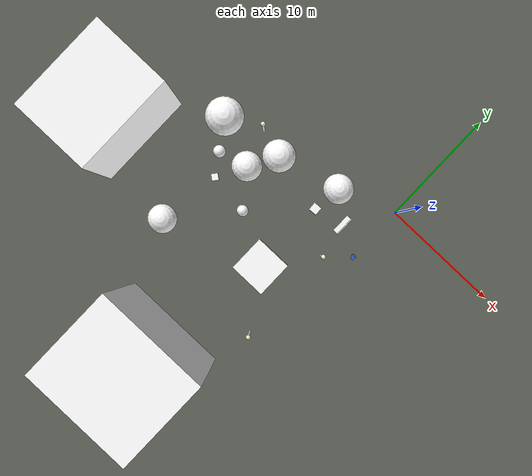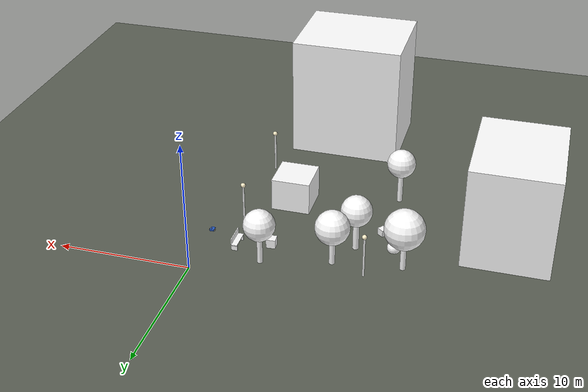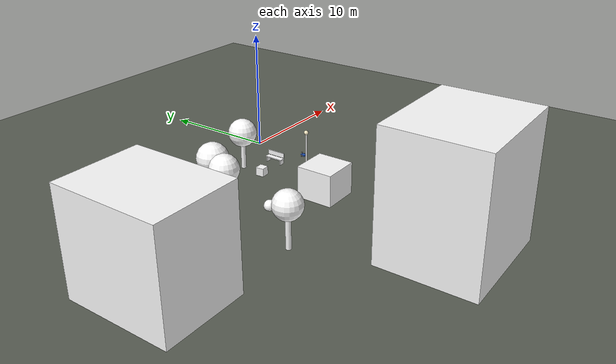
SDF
<sdf version="1.9">
 <world name="park_0">
  <model name="ground_plane">
   <static>true</static>
   <link name="link">
    <collision name="collision">
     <geometry><plane><normal>0 0 1</normal><size>300.000 300.000</size></plane></geometry>
     <surface><friction><ode><mu>1.0</mu><mu2>1.0</mu2></ode></friction></surface>
    </collision>
    <visual name="visual">
     <geometry><plane><normal>0 0 1</normal><size>300.000 300.000</size></plane></geometry>
     <material>
      <ambient>0.350 0.370 0.330 1</ambient>
      <diffuse>0.350 0.370 0.330 1</diffuse>
      <specular>0.08 0.08 0.08 1</specular>
     </material>
    </visual>
   </link>
  </model>
  <model name="building_7">
   <static>true</static>
   <pose>-6.849 -22.213 0.000 0.0000 0.0000 0.0000</pose>
   <link name="link">
    <collision name="c0">
     <pose>0.000 0.000 4.946 0.0000 0.0000 0.0000</pose>
     <geometry><box><size>8.918 7.427 9.893</size></box></geometry>
    </collision>
    <visual name="v0">
     <pose>0.000 0.000 4.946 0.0000 0.0000 0.0000</pose>
     <geometry><box><size>8.918 7.427 9.893</size></box></geometry>
     <material>
      <ambient>1.000 1.000 1.000 1</ambient>
      <diffuse>1.000 1.000 1.000 1</diffuse>
      <specular>0.08 0.08 0.08 1</specular>
      <pbr>
       <metal>
        <albedo_map>model://omnivla_textures/materials/textures/brick_red.png</albedo_map>
        <roughness>0.85</roughness>
        <metalness>0.0</metalness>
       </metal>
      </pbr>
     </material>
    </visual>
   </link>
  </model>
  <model name="building_14">
   <static>true</static>
   <pose>-21.716 -9.597 0.000 0.0000 0.0000 1.5708</pose>
   <link name="link">
    <collision name="c0">
     <pose>0.000 0.000 3.948 0.0000 0.0000 0.0000</pose>
     <geometry><box><size>8.286 6.431 7.897</size></box></geometry>
    </collision>
    <visual name="v0">
     <pose>0.000 0.000 3.948 0.0000 0.0000 0.0000</pose>
     <geometry><box><size>8.286 6.431 7.897</size></box></geometry>
     <material>
      <ambient>1.000 1.000 1.000 1</ambient>
      <diffuse>1.000 1.000 1.000 1</diffuse>
      <specular>0.08 0.08 0.08 1</specular>
      <pbr>
       <metal>
        <albedo_map>model://omnivla_textures/materials/textures/brick_red.png</albedo_map>
        <roughness>0.85</roughness>
        <metalness>0.0</metalness>
       </metal>
      </pbr>
     </material>
    </visual>
   </link>
  </model>
  <model name="building_18">
   <static>true</static>
   <pose>-4.916 -10.492 0.000 0.0000 0.0000 -1.5708</pose>
   <link name="link">
    <collision name="c0">
     <pose>0.000 0.000 1.300 0.0000 0.0000 0.0000</pose>
     <geometry><box><size>3.000 3.000 2.600</size></box></geometry>
    </collision>
    <visual name="v0">
     <pose>0.000 0.000 1.300 0.0000 0.0000 0.0000</pose>
     <geometry><box><size>3.000 3.000 2.600</size></box></geometry>
     <material>
      <ambient>1.000 1.000 1.000 1</ambient>
      <diffuse>1.000 1.000 1.000 1</diffuse>
      <specular>0.08 0.08 0.08 1</specular>
      <pbr>
       <metal>
        <albedo_map>model://omnivla_textures/materials/textures/facade_gray.png</albedo_map>
        <roughness>0.85</roughness>
        <metalness>0.0</metalness>
       </metal>
      </pbr>
     </material>
    </visual>
   </link>
  </model>
  <model name="tree_31">
   <static>true</static>
   <pose>-4.671 -2.091 0.000 0.0000 0.0000 2.9284</pose>
   <link name="link">
    <collision name="c0">
     <pose>0.000 0.000 1.229 0.0000 0.0000 0.0000</pose>
     <geometry><cylinder><radius>0.196</radius><length>2.459</length></cylinder></geometry>
    </collision>
    <visual name="v0">
     <pose>0.000 0.000 1.229 0.0000 0.0000 0.0000</pose>
     <geometry><cylinder><radius>0.196</radius><length>2.459</length></cylinder></geometry>
     <material>
      <ambient>1.000 1.000 1.000 1</ambient>
      <diffuse>1.000 1.000 1.000 1</diffuse>
      <specular>0.08 0.08 0.08 1</specular>
      <pbr>
       <metal>
        <albedo_map>model://omnivla_textures/materials/textures/bark.png</albedo_map>
        <roughness>0.85</roughness>
        <metalness>0.0</metalness>
       </metal>
      </pbr>
     </material>
    </visual>
    <visual name="v1">
     <pose>0.000 0.000 3.160 0.0000 0.0000 0.0000</pose>
     <geometry><sphere><radius>1.169</radius></sphere></geometry>
     <material>
      <ambient>1.000 1.000 1.000 1</ambient>
      <diffuse>1.000 1.000 1.000 1</diffuse>
      <specular>0.08 0.08 0.08 1</specular>
      <pbr>
       <metal>
        <albedo_map>model://omnivla_textures/materials/textures/leaves.png</albedo_map>
        <roughness>0.85</roughness>
        <metalness>0.0</metalness>
       </metal>
      </pbr>
     </material>
    </visual>
   </link>
  </model>
  <model name="tree_36">
   <static>true</static>
   <pose>-14.701 -4.049 0.000 0.0000 0.0000 -2.6475</pose>
   <link name="link">
    <collision name="c0">
     <pose>0.000 0.000 1.237 0.0000 0.0000 0.0000</pose>
     <geometry><cylinder><radius>0.205</radius><length>2.474</length></cylinder></geometry>
    </collision>
    <visual name="v0">
     <pose>0.000 0.000 1.237 0.0000 0.0000 0.0000</pose>
     <geometry><cylinder><radius>0.205</radius><length>2.474</length></cylinder></geometry>
     <material>
      <ambient>1.000 1.000 1.000 1</ambient>
      <diffuse>1.000 1.000 1.000 1</diffuse>
      <specular>0.08 0.08 0.08 1</specular>
      <pbr>
       <metal>
        <albedo_map>model://omnivla_textures/materials/textures/bark.png</albedo_map>
        <roughness>0.85</roughness>
        <metalness>0.0</metalness>
       </metal>
      </pbr>
     </material>
    </visual>
    <visual name="v1">
     <pose>0.000 0.000 3.369 0.0000 0.0000 0.0000</pose>
     <geometry><sphere><radius>1.492</radius></sphere></geometry>
     <material>
      <ambient>1.000 1.000 1.000 1</ambient>
      <diffuse>1.000 1.000 1.000 1</diffuse>
      <specular>0.08 0.08 0.08 1</specular>
      <pbr>
       <metal>
        <albedo_map>model://omnivla_textures/materials/textures/leaves.png</albedo_map>
        <roughness>0.85</roughness>
        <metalness>0.0</metalness>
       </metal>
      </pbr>
     </material>
    </visual>
   </link>
  </model>
  <model name="tree_46">
   <static>true</static>
   <pose>-9.683 -3.358 0.000 0.0000 0.0000 -2.7464</pose>
   <link name="link">
    <collision name="c0">
     <pose>0.000 0.000 1.144 0.0000 0.0000 0.0000</pose>
     <geometry><cylinder><radius>0.213</radius><length>2.288</length></cylinder></geometry>
    </collision>
    <visual name="v0">
     <pose>0.000 0.000 1.144 0.0000 0.0000 0.0000</pose>
     <geometry><cylinder><radius>0.213</radius><length>2.288</length></cylinder></geometry>
     <material>
      <ambient>1.000 1.000 1.000 1</ambient>
      <diffuse>1.000 1.000 1.000 1</diffuse>
      <specular>0.08 0.08 0.08 1</specular>
      <pbr>
       <metal>
        <albedo_map>model://omnivla_textures/materials/textures/bark.png</albedo_map>
        <roughness>0.85</roughness>
        <metalness>0.0</metalness>
       </metal>
      </pbr>
     </material>
    </visual>
    <visual name="v1">
     <pose>0.000 0.000 3.054 0.0000 0.0000 0.0000</pose>
     <geometry><sphere><radius>1.277</radius></sphere></geometry>
     <material>
      <ambient>1.000 1.000 1.000 1</ambient>
      <diffuse>1.000 1.000 1.000 1</diffuse>
      <specular>0.08 0.08 0.08 1</specular>
      <pbr>
       <metal>
        <albedo_map>model://omnivla_textures/materials/textures/leaves.png</albedo_map>
        <roughness>0.85</roughness>
        <metalness>0.0</metalness>
       </metal>
      </pbr>
     </material>
    </visual>
   </link>
  </model>
  <model name="tree_48">
   <static>true</static>
   <pose>-12.793 -12.890 0.000 0.0000 0.0000 2.3176</pose>
   <link name="link">
    <collision name="c0">
     <pose>0.000 0.000 1.348 0.0000 0.0000 0.0000</pose>
     <geometry><cylinder><radius>0.203</radius><length>2.697</length></cylinder></geometry>
    </collision>
    <visual name="v0">
     <pose>0.000 0.000 1.348 0.0000 0.0000 0.0000</pose>
     <geometry><cylinder><radius>0.203</radius><length>2.697</length></cylinder></geometry>
     <material>
      <ambient>1.000 1.000 1.000 1</ambient>
      <diffuse>1.000 1.000 1.000 1</diffuse>
      <specular>0.08 0.08 0.08 1</specular>
      <pbr>
       <metal>
        <albedo_map>model://omnivla_textures/materials/textures/bark.png</albedo_map>
        <roughness>0.85</roughness>
        <metalness>0.0</metalness>
       </metal>
      </pbr>
     </material>
    </visual>
    <visual name="v1">
     <pose>0.000 0.000 3.365 0.0000 0.0000 0.0000</pose>
     <geometry><sphere><radius>1.114</radius></sphere></geometry>
     <material>
      <ambient>1.000 1.000 1.000 1</ambient>
      <diffuse>1.000 1.000 1.000 1</diffuse>
      <specular>0.08 0.08 0.08 1</specular>
      <pbr>
       <metal>
        <albedo_map>model://omnivla_textures/materials/textures/leaves.png</albedo_map>
        <roughness>0.85</roughness>
        <metalness>0.0</metalness>
       </metal>
      </pbr>
     </material>
    </visual>
   </link>
  </model>
  <model name="tree_70">
   <static>true</static>
   <pose>-10.904 -5.622 0.000 0.0000 0.0000 1.3567</pose>
   <link name="link">
    <collision name="c0">
     <pose>0.000 0.000 1.271 0.0000 0.0000 0.0000</pose>
     <geometry><cylinder><radius>0.230</radius><length>2.542</length></cylinder></geometry>
    </collision>
    <visual name="v0">
     <pose>0.000 0.000 1.271 0.0000 0.0000 0.0000</pose>
     <geometry><cylinder><radius>0.230</radius><length>2.542</length></cylinder></geometry>
     <material>
      <ambient>1.000 1.000 1.000 1</ambient>
      <diffuse>1.000 1.000 1.000 1</diffuse>
      <specular>0.08 0.08 0.08 1</specular>
      <pbr>
       <metal>
        <albedo_map>model://omnivla_textures/materials/textures/bark.png</albedo_map>
        <roughness>0.85</roughness>
        <metalness>0.0</metalness>
       </metal>
      </pbr>
     </material>
    </visual>
    <visual name="v1">
     <pose>0.000 0.000 3.242 0.0000 0.0000 0.0000</pose>
     <geometry><sphere><radius>1.167</radius></sphere></geometry>
     <material>
      <ambient>1.000 1.000 1.000 1</ambient>
      <diffuse>1.000 1.000 1.000 1</diffuse>
      <specular>0.08 0.08 0.08 1</specular>
      <pbr>
       <metal>
        <albedo_map>model://omnivla_textures/materials/textures/leaves.png</albedo_map>
        <roughness>0.85</roughness>
        <metalness>0.0</metalness>
       </metal>
      </pbr>
     </material>
    </visual>
   </link>
  </model>
  <model name="bench_114">
   <static>true</static>
   <pose>-2.428 -3.652 0.000 0.0000 0.0000 1.5708</pose>
   <link name="link">
    <collision name="c0">
     <pose>0.000 0.000 0.450 0.0000 0.0000 0.0000</pose>
     <geometry><box><size>1.600 0.450 0.080</size></box></geometry>
    </collision>
    <visual name="v0">
     <pose>0.000 0.000 0.450 0.0000 0.0000 0.0000</pose>
     <geometry><box><size>1.600 0.450 0.080</size></box></geometry>
     <material>
      <ambient>1.000 1.000 1.000 1</ambient>
      <diffuse>1.000 1.000 1.000 1</diffuse>
      <specular>0.08 0.08 0.08 1</specular>
      <pbr>
       <metal>
        <albedo_map>model://omnivla_textures/materials/textures/wood_floor.png</albedo_map>
        <roughness>0.85</roughness>
        <metalness>0.0</metalness>
       </metal>
      </pbr>
     </material>
    </visual>
    <collision name="c1">
     <pose>0.000 -0.200 0.750 0.0000 0.0000 0.0000</pose>
     <geometry><box><size>1.600 0.060 0.400</size></box></geometry>
    </collision>
    <visual name="v1">
     <pose>0.000 -0.200 0.750 0.0000 0.0000 0.0000</pose>
     <geometry><box><size>1.600 0.060 0.400</size></box></geometry>
     <material>
      <ambient>1.000 1.000 1.000 1</ambient>
      <diffuse>1.000 1.000 1.000 1</diffuse>
      <specular>0.08 0.08 0.08 1</specular>
      <pbr>
       <metal>
        <albedo_map>model://omnivla_textures/materials/textures/wood_floor.png</albedo_map>
        <roughness>0.85</roughness>
        <metalness>0.0</metalness>
       </metal>
      </pbr>
     </material>
    </visual>
    <collision name="c2">
     <pose>0.700 0.000 0.225 0.0000 0.0000 0.0000</pose>
     <geometry><box><size>0.080 0.450 0.450</size></box></geometry>
    </collision>
    <visual name="v2">
     <pose>0.700 0.000 0.225 0.0000 0.0000 0.0000</pose>
     <geometry><box><size>0.080 0.450 0.450</size></box></geometry>
     <material>
      <ambient>1.000 1.000 1.000 1</ambient>
      <diffuse>1.000 1.000 1.000 1</diffuse>
      <specular>0.08 0.08 0.08 1</specular>
      <pbr>
       <metal>
        <albedo_map>model://omnivla_textures/materials/textures/metal.png</albedo_map>
        <roughness>0.85</roughness>
        <metalness>0.0</metalness>
       </metal>
      </pbr>
     </material>
    </visual>
    <collision name="c3">
     <pose>-0.700 0.000 0.225 0.0000 0.0000 0.0000</pose>
     <geometry><box><size>0.080 0.450 0.450</size></box></geometry>
    </collision>
    <visual name="v3">
     <pose>-0.700 0.000 0.225 0.0000 0.0000 0.0000</pose>
     <geometry><box><size>0.080 0.450 0.450</size></box></geometry>
     <material>
      <ambient>1.000 1.000 1.000 1</ambient>
      <diffuse>1.000 1.000 1.000 1</diffuse>
      <specular>0.08 0.08 0.08 1</specular>
      <pbr>
       <metal>
        <albedo_map>model://omnivla_textures/materials/textures/metal.png</albedo_map>
        <roughness>0.85</roughness>
        <metalness>0.0</metalness>
       </metal>
      </pbr>
     </material>
    </visual>
   </link>
  </model>
  <model name="lamp_121">
   <static>true</static>
   <pose>-12.193 -2.467 0.000 0.0000 0.0000 0.0000</pose>
   <link name="link">
    <collision name="c0">
     <pose>0.000 0.000 1.600 0.0000 0.0000 0.0000</pose>
     <geometry><cylinder><radius>0.070</radius><length>3.200</length></cylinder></geometry>
    </collision>
    <visual name="v0">
     <pose>0.000 0.000 1.600 0.0000 0.0000 0.0000</pose>
     <geometry><cylinder><radius>0.070</radius><length>3.200</length></cylinder></geometry>
     <material>
      <ambient>1.000 1.000 1.000 1</ambient>
      <diffuse>1.000 1.000 1.000 1</diffuse>
      <specular>0.08 0.08 0.08 1</specular>
      <pbr>
       <metal>
        <albedo_map>model://omnivla_textures/materials/textures/metal.png</albedo_map>
        <roughness>0.85</roughness>
        <metalness>0.0</metalness>
       </metal>
      </pbr>
     </material>
    </visual>
    <visual name="v1">
     <pose>0.000 0.000 3.300 0.0000 0.0000 0.0000</pose>
     <geometry><sphere><radius>0.180</radius></sphere></geometry>
     <material>
      <ambient>1.000 0.950 0.800 1</ambient>
      <diffuse>1.000 0.950 0.800 1</diffuse>
      <specular>0.08 0.08 0.08 1</specular>
     </material>
    </visual>
   </link>
  </model>
  <model name="lamp_130">
   <static>true</static>
   <pose>-1.957 -6.632 0.000 0.0000 0.0000 1.5708</pose>
   <link name="link">
    <collision name="c0">
     <pose>0.000 0.000 1.600 0.0000 0.0000 0.0000</pose>
     <geometry><cylinder><radius>0.070</radius><length>3.200</length></cylinder></geometry>
    </collision>
    <visual name="v0">
     <pose>0.000 0.000 1.600 0.0000 0.0000 0.0000</pose>
     <geometry><cylinder><radius>0.070</radius><length>3.200</length></cylinder></geometry>
     <material>
      <ambient>1.000 1.000 1.000 1</ambient>
      <diffuse>1.000 1.000 1.000 1</diffuse>
      <specular>0.08 0.08 0.08 1</specular>
      <pbr>
       <metal>
        <albedo_map>model://omnivla_textures/materials/textures/metal.png</albedo_map>
        <roughness>0.85</roughness>
        <metalness>0.0</metalness>
       </metal>
      </pbr>
     </material>
    </visual>
    <visual name="v1">
     <pose>0.000 0.000 3.300 0.0000 0.0000 0.0000</pose>
     <geometry><sphere><radius>0.180</radius></sphere></geometry>
     <material>
      <ambient>1.000 0.950 0.800 1</ambient>
      <diffuse>1.000 0.950 0.800 1</diffuse>
      <specular>0.08 0.08 0.08 1</specular>
     </material>
    </visual>
   </link>
  </model>
  <model name="lamp_165">
   <static>true</static>
   <pose>-1.912 -14.958 0.000 0.0000 0.0000 1.5708</pose>
   <link name="link">
    <collision name="c0">
     <pose>0.000 0.000 1.600 0.0000 0.0000 0.0000</pose>
     <geometry><cylinder><radius>0.070</radius><length>3.200</length></cylinder></geometry>
    </collision>
    <visual name="v0">
     <pose>0.000 0.000 1.600 0.0000 0.0000 0.0000</pose>
     <geometry><cylinder><radius>0.070</radius><length>3.200</length></cylinder></geometry>
     <material>
      <ambient>1.000 1.000 1.000 1</ambient>
      <diffuse>1.000 1.000 1.000 1</diffuse>
      <specular>0.08 0.08 0.08 1</specular>
      <pbr>
       <metal>
        <albedo_map>model://omnivla_textures/materials/textures/metal.png</albedo_map>
        <roughness>0.85</roughness>
        <metalness>0.0</metalness>
       </metal>
      </pbr>
     </material>
    </visual>
    <visual name="v1">
     <pose>0.000 0.000 3.300 0.0000 0.0000 0.0000</pose>
     <geometry><sphere><radius>0.180</radius></sphere></geometry>
     <material>
      <ambient>1.000 0.950 0.800 1</ambient>
      <diffuse>1.000 0.950 0.800 1</diffuse>
      <specular>0.08 0.08 0.08 1</specular>
     </material>
    </visual>
   </link>
  </model>
  <model name="rock_415">
   <static>true</static>
   <pose>-13.660 -6.123 0.000 0.0000 0.0000 -2.5295</pose>
   <link name="link">
    <collision name="c0">
     <pose>0.000 0.000 0.203 0.0000 0.0000 0.0000</pose>
     <geometry><sphere><radius>0.506</radius></sphere></geometry>
    </collision>
    <visual name="v0">
     <pose>0.000 0.000 0.203 0.0000 0.0000 0.0000</pose>
     <geometry><sphere><radius>0.506</radius></sphere></geometry>
     <material>
      <ambient>1.000 1.000 1.000 1</ambient>
      <diffuse>1.000 1.000 1.000 1</diffuse>
      <specular>0.08 0.08 0.08 1</specular>
      <pbr>
       <metal>
        <albedo_map>model://omnivla_textures/materials/textures/rock.png</albedo_map>
        <roughness>0.85</roughness>
        <metalness>0.0</metalness>
       </metal>
      </pbr>
     </material>
    </visual>
   </link>
  </model>
  <model name="rock_454">
   <static>true</static>
   <pose>-9.029 -8.311 0.000 0.0000 0.0000 -0.3880</pose>
   <link name="link">
    <collision name="c0">
     <pose>0.000 0.000 0.186 0.0000 0.0000 0.0000</pose>
     <geometry><sphere><radius>0.466</radius></sphere></geometry>
    </collision>
    <visual name="v0">
     <pose>0.000 0.000 0.186 0.0000 0.0000 0.0000</pose>
     <geometry><sphere><radius>0.466</radius></sphere></geometry>
     <material>
      <ambient>1.000 1.000 1.000 1</ambient>
      <diffuse>1.000 1.000 1.000 1</diffuse>
      <specular>0.08 0.08 0.08 1</specular>
      <pbr>
       <metal>
        <albedo_map>model://omnivla_textures/materials/textures/rock.png</albedo_map>
        <roughness>0.85</roughness>
        <metalness>0.0</metalness>
       </metal>
      </pbr>
     </material>
    </visual>
   </link>
  </model>
  <model name="crate_482">
   <static>true</static>
   <pose>-4.887 -4.219 0.000 0.0000 0.0000 -3.0808</pose>
   <link name="link">
    <collision name="c0">
     <pose>0.000 0.000 0.346 0.0000 0.0000 0.0000</pose>
     <geometry><box><size>0.693 0.693 0.693</size></box></geometry>
    </collision>
    <visual name="v0">
     <pose>0.000 0.000 0.346 0.0000 0.0000 0.0000</pose>
     <geometry><box><size>0.693 0.693 0.693</size></box></geometry>
     <material>
      <ambient>1.000 1.000 1.000 1</ambient>
      <diffuse>1.000 1.000 1.000 1</diffuse>
      <specular>0.08 0.08 0.08 1</specular>
      <pbr>
       <metal>
        <albedo_map>model://omnivla_textures/materials/textures/cardboard.png</albedo_map>
        <roughness>0.85</roughness>
        <metalness>0.0</metalness>
       </metal>
      </pbr>
     </material>
    </visual>
   </link>
  </model>
  <model name="crate_487">
   <static>true</static>
   <pose>-12.467 -7.873 0.000 0.0000 0.0000 -2.2227</pose>
   <link name="link">
    <collision name="c0">
     <pose>0.000 0.000 0.268 0.0000 0.0000 0.0000</pose>
     <geometry><box><size>0.535 0.535 0.535</size></box></geometry>
    </collision>
    <visual name="v0">
     <pose>0.000 0.000 0.268 0.0000 0.0000 0.0000</pose>
     <geometry><box><size>0.535 0.535 0.535</size></box></geometry>
     <material>
      <ambient>1.000 1.000 1.000 1</ambient>
      <diffuse>1.000 1.000 1.000 1</diffuse>
      <specular>0.08 0.08 0.08 1</specular>
      <pbr>
       <metal>
        <albedo_map>model://omnivla_textures/materials/textures/cardboard.png</albedo_map>
        <roughness>0.85</roughness>
        <metalness>0.0</metalness>
       </metal>
      </pbr>
     </material>
    </visual>
   </link>
  </model>
  <include>
   <uri>model://omnivla_robot</uri>
   <name>omnivla_robot</name>
   <pose>0.000 -4.910 0.020 0.0000 0.0000 1.5708</pose>
  </include>
 </world>
</sdf>
